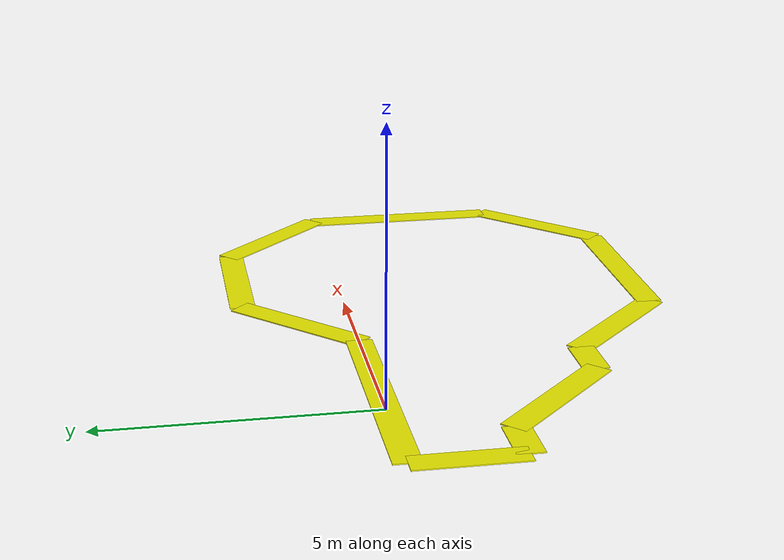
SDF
<?xml version="1.0" ?>
<sdf version="1.6">
  <model name="black_line_track">
    <static>true</static>
    <link name="track_link">

      <visual name="vertical1">
        <pose>0.5 0 0.01 0 0 0</pose>
        <geometry>
          <box><size>5 0.5 0.02</size></box>
        </geometry>
        <material><ambient>1 1 0 1</ambient></material>
      </visual>

      <visual name="diagonal1">
        <pose>4 1 0.01 0 0 0.7854</pose>
        <geometry>
          <box><size>3 0.5 0.02</size></box>
        </geometry>
        <material><ambient>1 1 0 1</ambient></material>
      </visual>

      <visual name="vertical2">
        <pose>6.5 2 0.01 0 0 0</pose>
        <geometry>
          <box><size>3 0.5 0.02</size></box>
        </geometry>
        <material><ambient>1 1 0 1</ambient></material>
      </visual>

      <visual name="diagonal2">
        <pose>9 1 0.01 0 0 -0.7854</pose>
        <geometry>
          <box><size>3 0.5 0.02</size></box>
        </geometry>
        <material><ambient>1 1 0 1</ambient></material>
      </visual>

      <visual name="horizontal1">
        <pose>10 -2 0.01 0 0 -1.5708</pose>
        <geometry>
          <box><size>4 0.5 0.02</size></box>
        </geometry>
        <material><ambient>1 1 0 1</ambient></material>
      </visual>

      <visual name="diagonal3">
        <pose>9 -5 0.01 0 0 -2.3562</pose>
        <geometry>
          <box><size>3 0.5 0.02</size></box>
        </geometry>
        <material><ambient>1 1 0 1</ambient></material>
      </visual>

      <visual name="vertical3">
        <pose>6 -6 0.01 0 0 0</pose>
        <geometry>
          <box><size>4 0.5 0.02</size></box>
        </geometry>
        <material><ambient>1 1 0 1</ambient></material>
      </visual>

      <visual name="diagonal4">
        <pose>3 -5 0.01 0 0 -0.7854</pose>
        <geometry>
          <box><size>3 0.5 0.02</size></box>
        </geometry>
        <material><ambient>1 1 0 1</ambient></material>
      </visual>

      <visual name="vertical4">
        <pose>1.5 -4 0.01 0 0 0</pose>
        <geometry>
          <box><size>1 0.5 0.02</size></box>
        </geometry>
        <material><ambient>1 1 0 1</ambient></material>
      </visual>

      <visual name="diagonal5">
        <pose>0 -3 0.01 0 0 -0.7854</pose>
        <geometry>
          <box><size>3 0.5 0.02</size></box>
        </geometry>
        <material><ambient>1 1 0 1</ambient></material>
      </visual>

      <visual name="vertical5">
        <pose>-1.5 -2 0.01 0 0 0</pose>
        <geometry>
          <box><size>1 0.5 0.02</size></box>
        </geometry>
        <material><ambient>1 1 0 1</ambient></material>
      </visual>

      <visual name="horizontal2">
        <pose>-2 -1 0.01 0 0 -1.5708</pose>
        <geometry>
          <box><size>2 0.5 0.02</size></box>
        </geometry>
        <material><ambient>1 1 0 1</ambient></material>
      </visual>

    </link>
  </model>
</sdf>
